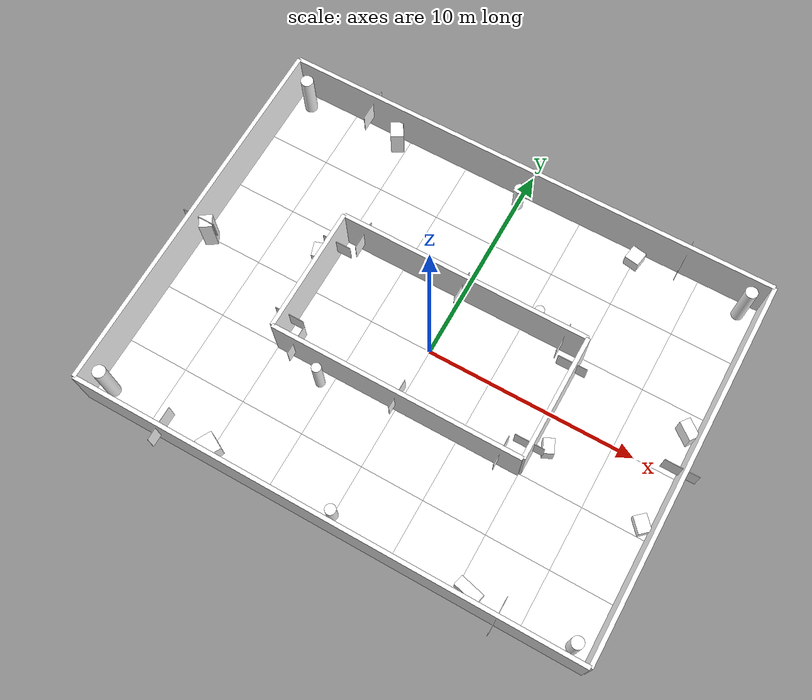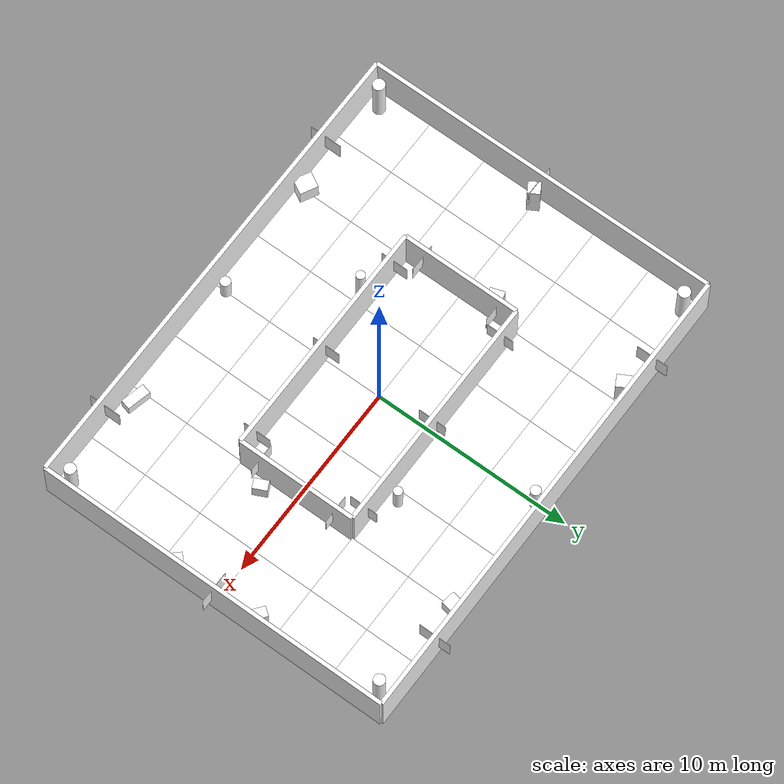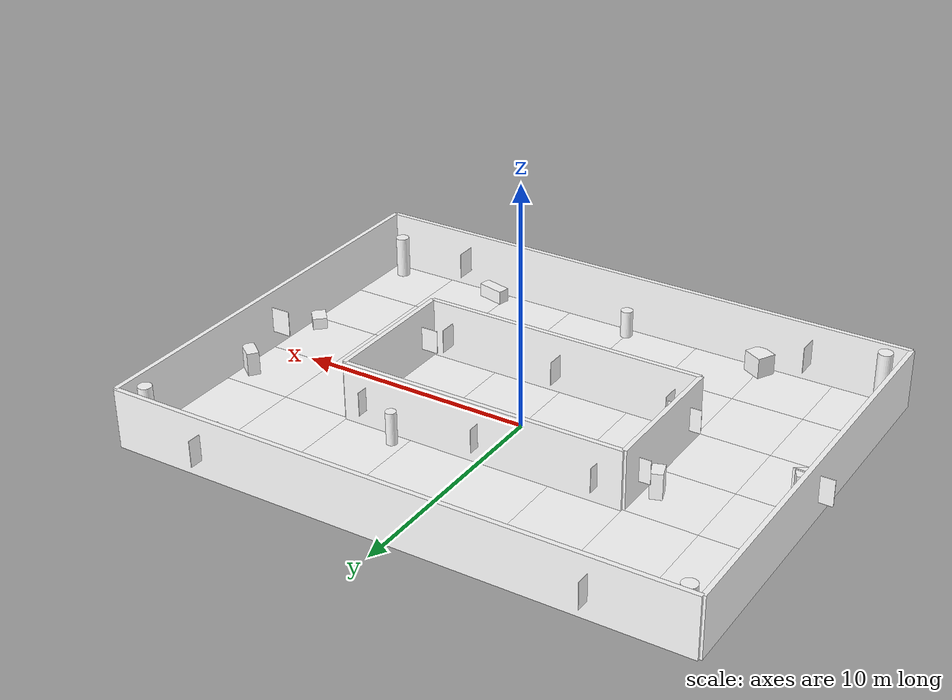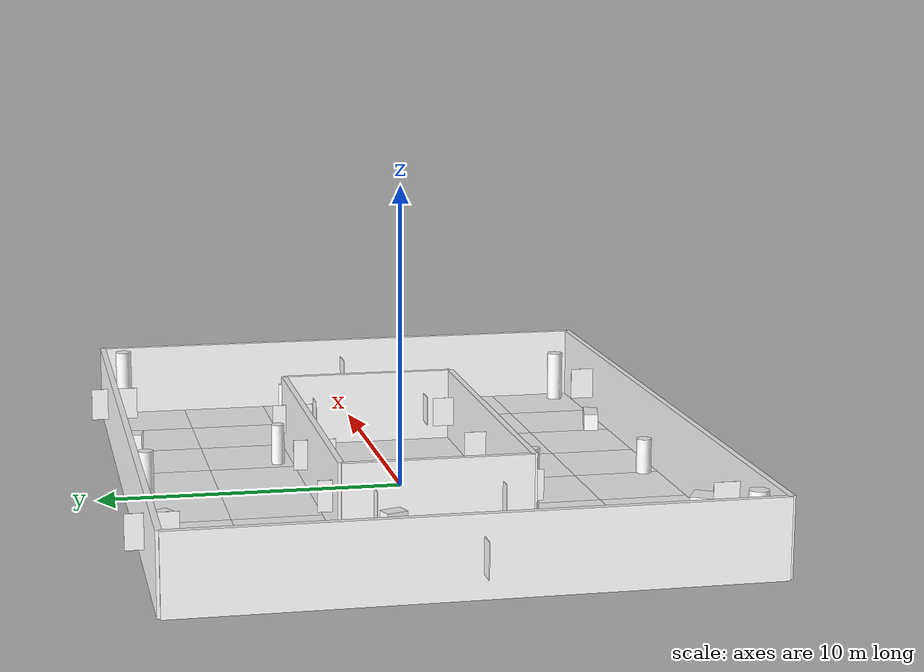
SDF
<?xml version="1.0"?>
<sdf version="1.8">
  <world name="slam_world">

    <physics name="1ms" type="ignored">
      <max_step_size>0.001</max_step_size>
      <real_time_factor>1.0</real_time_factor>
    </physics>

    <plugin filename="libignition-gazebo-physics-system.so"
            name="ignition::gazebo::systems::Physics"/>
    <plugin filename="libignition-gazebo-user-commands-system.so"
            name="ignition::gazebo::systems::UserCommands"/>
    <plugin filename="libignition-gazebo-scene-broadcaster-system.so"
            name="ignition::gazebo::systems::SceneBroadcaster"/>

    <gravity>0 0 -9.8</gravity>
    <magnetic_field>5.565e-06 2.289e-05 -4.239e-05</magnetic_field>
    <atmosphere type="adiabatic"/>

    <scene>
      <ambient>0.55 0.55 0.55 1</ambient>
      <background>0.75 0.80 0.88 1</background>
      <shadows>true</shadows>
      <grid>false</grid>
    </scene>

    <light type="directional" name="sol">
      <cast_shadows>true</cast_shadows>
      <pose>0 0 12 0 0 0</pose>
      <diffuse>0.9 0.9 0.9 1</diffuse>
      <specular>0.25 0.25 0.25 1</specular>
      <attenuation>
        <range>100</range>
        <constant>0.9</constant>
        <linear>0.01</linear>
        <quadratic>0.001</quadratic>
      </attenuation>
      <direction>-0.4 0.3 -0.9</direction>
    </light>

    <light type="point" name="lampara_1">
      <pose>-7 0 2.4 0 0 0</pose>
      <diffuse>0.6 0.6 0.55 1</diffuse>
      <attenuation><range>18</range><constant>0.4</constant><linear>0.05</linear></attenuation>
    </light>
    <light type="point" name="lampara_2">
      <pose>7 0 2.4 0 0 0</pose>
      <diffuse>0.6 0.6 0.55 1</diffuse>
      <attenuation><range>18</range><constant>0.4</constant><linear>0.05</linear></attenuation>
    </light>

    <model name="suelo_colision">
      <static>true</static>
      <link name="link">
        <collision name="col">
          <geometry><plane><normal>0 0 1</normal><size>60 60</size></plane></geometry>
          <surface><friction><ode><mu>100</mu><mu2>50</mu2></ode></friction></surface>
        </collision>
      </link>
    </model>
    <model name="baldosa_0_0">
      <static>true</static>
      <pose>-10.500 -7.500 0.010 0 0 1.5708</pose>
      <link name="link">
        <visual name="vis">
          <geometry><box><size>3.0 3.0 0.02</size></box></geometry>
          <material>
            <diffuse>1.0 1.0 1.0</diffuse>
            <specular>0.15 0.15 0.15</specular>
            <pbr>
              <metal>
                <albedo_map>model://avular_slam/media/textures/suelo_01.png</albedo_map>
                <metalness>0.0</metalness>
                <roughness>0.9</roughness>
              </metal>
            </pbr>
          </material>
        </visual>
      </link>
    </model>
    <model name="baldosa_0_1">
      <static>true</static>
      <pose>-10.500 -4.500 0.010 0 0 1.5708</pose>
      <link name="link">
        <visual name="vis">
          <geometry><box><size>3.0 3.0 0.02</size></box></geometry>
          <material>
            <diffuse>1.0 1.0 1.0</diffuse>
            <specular>0.15 0.15 0.15</specular>
            <pbr>
              <metal>
                <albedo_map>model://avular_slam/media/textures/suelo_05.png</albedo_map>
                <metalness>0.0</metalness>
                <roughness>0.9</roughness>
              </metal>
            </pbr>
          </material>
        </visual>
      </link>
    </model>
    <model name="baldosa_0_2">
      <static>true</static>
      <pose>-10.500 -1.500 0.010 0 0 0.0000</pose>
      <link name="link">
        <visual name="vis">
          <geometry><box><size>3.0 3.0 0.02</size></box></geometry>
          <material>
            <diffuse>1.0 1.0 1.0</diffuse>
            <specular>0.15 0.15 0.15</specular>
            <pbr>
              <metal>
                <albedo_map>model://avular_slam/media/textures/suelo_00.png</albedo_map>
                <metalness>0.0</metalness>
                <roughness>0.9</roughness>
              </metal>
            </pbr>
          </material>
        </visual>
      </link>
    </model>
    <model name="baldosa_0_3">
      <static>true</static>
      <pose>-10.500 1.500 0.010 0 0 0.0000</pose>
      <link name="link">
        <visual name="vis">
          <geometry><box><size>3.0 3.0 0.02</size></box></geometry>
          <material>
            <diffuse>1.0 1.0 1.0</diffuse>
            <specular>0.15 0.15 0.15</specular>
            <pbr>
              <metal>
                <albedo_map>model://avular_slam/media/textures/suelo_02.png</albedo_map>
                <metalness>0.0</metalness>
                <roughness>0.9</roughness>
              </metal>
            </pbr>
          </material>
        </visual>
      </link>
    </model>
    <model name="baldosa_0_4">
      <static>true</static>
      <pose>-10.500 4.500 0.010 0 0 0.0000</pose>
      <link name="link">
        <visual name="vis">
          <geometry><box><size>3.0 3.0 0.02</size></box></geometry>
          <material>
            <diffuse>1.0 1.0 1.0</diffuse>
            <specular>0.15 0.15 0.15</specular>
            <pbr>
              <metal>
                <albedo_map>model://avular_slam/media/textures/suelo_04.png</albedo_map>
                <metalness>0.0</metalness>
                <roughness>0.9</roughness>
              </metal>
            </pbr>
          </material>
        </visual>
      </link>
    </model>
    <model name="baldosa_0_5">
      <static>true</static>
      <pose>-10.500 7.500 0.010 0 0 0.0000</pose>
      <link name="link">
        <visual name="vis">
          <geometry><box><size>3.0 3.0 0.02</size></box></geometry>
          <material>
            <diffuse>1.0 1.0 1.0</diffuse>
            <specular>0.15 0.15 0.15</specular>
            <pbr>
              <metal>
                <albedo_map>model://avular_slam/media/textures/suelo_00.png</albedo_map>
                <metalness>0.0</metalness>
                <roughness>0.9</roughness>
              </metal>
            </pbr>
          </material>
        </visual>
      </link>
    </model>
    <model name="baldosa_1_0">
      <static>true</static>
      <pose>-7.500 -7.500 0.010 0 0 0.0000</pose>
      <link name="link">
        <visual name="vis">
          <geometry><box><size>3.0 3.0 0.02</size></box></geometry>
          <material>
            <diffuse>1.0 1.0 1.0</diffuse>
            <specular>0.15 0.15 0.15</specular>
            <pbr>
              <metal>
                <albedo_map>model://avular_slam/media/textures/suelo_03.png</albedo_map>
                <metalness>0.0</metalness>
                <roughness>0.9</roughness>
              </metal>
            </pbr>
          </material>
        </visual>
      </link>
    </model>
    <model name="baldosa_1_1">
      <static>true</static>
      <pose>-7.500 -4.500 0.010 0 0 1.5708</pose>
      <link name="link">
        <visual name="vis">
          <geometry><box><size>3.0 3.0 0.02</size></box></geometry>
          <material>
            <diffuse>1.0 1.0 1.0</diffuse>
            <specular>0.15 0.15 0.15</specular>
            <pbr>
              <metal>
                <albedo_map>model://avular_slam/media/textures/suelo_00.png</albedo_map>
                <metalness>0.0</metalness>
                <roughness>0.9</roughness>
              </metal>
            </pbr>
          </material>
        </visual>
      </link>
    </model>
    <model name="baldosa_1_2">
      <static>true</static>
      <pose>-7.500 -1.500 0.010 0 0 0.0000</pose>
      <link name="link">
        <visual name="vis">
          <geometry><box><size>3.0 3.0 0.02</size></box></geometry>
          <material>
            <diffuse>1.0 1.0 1.0</diffuse>
            <specular>0.15 0.15 0.15</specular>
            <pbr>
              <metal>
                <albedo_map>model://avular_slam/media/textures/suelo_00.png</albedo_map>
                <metalness>0.0</metalness>
                <roughness>0.9</roughness>
              </metal>
            </pbr>
          </material>
        </visual>
      </link>
    </model>
    <model name="baldosa_1_3">
      <static>true</static>
      <pose>-7.500 1.500 0.010 0 0 1.5708</pose>
      <link name="link">
        <visual name="vis">
          <geometry><box><size>3.0 3.0 0.02</size></box></geometry>
          <material>
            <diffuse>1.0 1.0 1.0</diffuse>
            <specular>0.15 0.15 0.15</specular>
            <pbr>
              <metal>
                <albedo_map>model://avular_slam/media/textures/suelo_00.png</albedo_map>
                <metalness>0.0</metalness>
                <roughness>0.9</roughness>
              </metal>
            </pbr>
          </material>
        </visual>
      </link>
    </model>
    <model name="baldosa_1_4">
      <static>true</static>
      <pose>-7.500 4.500 0.010 0 0 0.0000</pose>
      <link name="link">
        <visual name="vis">
          <geometry><box><size>3.0 3.0 0.02</size></box></geometry>
          <material>
            <diffuse>1.0 1.0 1.0</diffuse>
            <specular>0.15 0.15 0.15</specular>
            <pbr>
              <metal>
                <albedo_map>model://avular_slam/media/textures/suelo_01.png</albedo_map>
                <metalness>0.0</metalness>
                <roughness>0.9</roughness>
              </metal>
            </pbr>
          </material>
        </visual>
      </link>
    </model>
    <model name="baldosa_1_5">
      <static>true</static>
      <pose>-7.500 7.500 0.010 0 0 0.0000</pose>
      <link name="link">
        <visual name="vis">
          <geometry><box><size>3.0 3.0 0.02</size></box></geometry>
          <material>
            <diffuse>1.0 1.0 1.0</diffuse>
            <specular>0.15 0.15 0.15</specular>
            <pbr>
              <metal>
                <albedo_map>model://avular_slam/media/textures/suelo_04.png</albedo_map>
                <metalness>0.0</metalness>
                <roughness>0.9</roughness>
              </metal>
            </pbr>
          </material>
        </visual>
      </link>
    </model>
    <model name="baldosa_2_0">
      <static>true</static>
      <pose>-4.500 -7.500 0.010 0 0 1.5708</pose>
      <link name="link">
        <visual name="vis">
          <geometry><box><size>3.0 3.0 0.02</size></box></geometry>
          <material>
            <diffuse>1.0 1.0 1.0</diffuse>
            <specular>0.15 0.15 0.15</specular>
            <pbr>
              <metal>
                <albedo_map>model://avular_slam/media/textures/suelo_00.png</albedo_map>
                <metalness>0.0</metalness>
                <roughness>0.9</roughness>
              </metal>
            </pbr>
          </material>
        </visual>
      </link>
    </model>
    <model name="baldosa_2_1">
      <static>true</static>
      <pose>-4.500 -4.500 0.010 0 0 0.0000</pose>
      <link name="link">
        <visual name="vis">
          <geometry><box><size>3.0 3.0 0.02</size></box></geometry>
          <material>
            <diffuse>1.0 1.0 1.0</diffuse>
            <specular>0.15 0.15 0.15</specular>
            <pbr>
              <metal>
                <albedo_map>model://avular_slam/media/textures/suelo_00.png</albedo_map>
                <metalness>0.0</metalness>
                <roughness>0.9</roughness>
              </metal>
            </pbr>
          </material>
        </visual>
      </link>
    </model>
    <model name="baldosa_2_2">
      <static>true</static>
      <pose>-4.500 -1.500 0.010 0 0 0.0000</pose>
      <link name="link">
        <visual name="vis">
          <geometry><box><size>3.0 3.0 0.02</size></box></geometry>
          <material>
            <diffuse>1.0 1.0 1.0</diffuse>
            <specular>0.15 0.15 0.15</specular>
            <pbr>
              <metal>
                <albedo_map>model://avular_slam/media/textures/suelo_02.png</albedo_map>
                <metalness>0.0</metalness>
                <roughness>0.9</roughness>
              </metal>
            </pbr>
          </material>
        </visual>
      </link>
    </model>
    <model name="baldosa_2_3">
      <static>true</static>
      <pose>-4.500 1.500 0.010 0 0 1.5708</pose>
      <link name="link">
        <visual name="vis">
          <geometry><box><size>3.0 3.0 0.02</size></box></geometry>
          <material>
            <diffuse>1.0 1.0 1.0</diffuse>
            <specular>0.15 0.15 0.15</specular>
            <pbr>
              <metal>
                <albedo_map>model://avular_slam/media/textures/suelo_01.png</albedo_map>
                <metalness>0.0</metalness>
                <roughness>0.9</roughness>
              </metal>
            </pbr>
          </material>
        </visual>
      </link>
    </model>
    <model name="baldosa_2_4">
      <static>true</static>
      <pose>-4.500 4.500 0.010 0 0 0.0000</pose>
      <link name="link">
        <visual name="vis">
          <geometry><box><size>3.0 3.0 0.02</size></box></geometry>
          <material>
            <diffuse>1.0 1.0 1.0</diffuse>
            <specular>0.15 0.15 0.15</specular>
            <pbr>
              <metal>
                <albedo_map>model://avular_slam/media/textures/suelo_04.png</albedo_map>
                <metalness>0.0</metalness>
                <roughness>0.9</roughness>
              </metal>
            </pbr>
          </material>
        </visual>
      </link>
    </model>
    <model name="baldosa_2_5">
      <static>true</static>
      <pose>-4.500 7.500 0.010 0 0 1.5708</pose>
      <link name="link">
        <visual name="vis">
          <geometry><box><size>3.0 3.0 0.02</size></box></geometry>
          <material>
            <diffuse>1.0 1.0 1.0</diffuse>
            <specular>0.15 0.15 0.15</specular>
            <pbr>
              <metal>
                <albedo_map>model://avular_slam/media/textures/suelo_04.png</albedo_map>
                <metalness>0.0</metalness>
                <roughness>0.9</roughness>
              </metal>
            </pbr>
          </material>
        </visual>
      </link>
    </model>
    <model name="baldosa_3_0">
      <static>true</static>
      <pose>-1.500 -7.500 0.010 0 0 0.0000</pose>
      <link name="link">
        <visual name="vis">
          <geometry><box><size>3.0 3.0 0.02</size></box></geometry>
          <material>
            <diffuse>1.0 1.0 1.0</diffuse>
            <specular>0.15 0.15 0.15</specular>
            <pbr>
              <metal>
                <albedo_map>model://avular_slam/media/textures/suelo_00.png</albedo_map>
                <metalness>0.0</metalness>
                <roughness>0.9</roughness>
              </metal>
            </pbr>
          </material>
        </visual>
      </link>
    </model>
    <model name="baldosa_3_1">
      <static>true</static>
      <pose>-1.500 -4.500 0.010 0 0 0.0000</pose>
      <link name="link">
        <visual name="vis">
          <geometry><box><size>3.0 3.0 0.02</size></box></geometry>
          <material>
            <diffuse>1.0 1.0 1.0</diffuse>
            <specular>0.15 0.15 0.15</specular>
            <pbr>
              <metal>
                <albedo_map>model://avular_slam/media/textures/suelo_02.png</albedo_map>
                <metalness>0.0</metalness>
                <roughness>0.9</roughness>
              </metal>
            </pbr>
          </material>
        </visual>
      </link>
    </model>
    <model name="baldosa_3_2">
      <static>true</static>
      <pose>-1.500 -1.500 0.010 0 0 0.0000</pose>
      <link name="link">
        <visual name="vis">
          <geometry><box><size>3.0 3.0 0.02</size></box></geometry>
          <material>
            <diffuse>1.0 1.0 1.0</diffuse>
            <specular>0.15 0.15 0.15</specular>
            <pbr>
              <metal>
                <albedo_map>model://avular_slam/media/textures/suelo_04.png</albedo_map>
                <metalness>0.0</metalness>
                <roughness>0.9</roughness>
              </metal>
            </pbr>
          </material>
        </visual>
      </link>
    </model>
    <model name="baldosa_3_3">
      <static>true</static>
      <pose>-1.500 1.500 0.010 0 0 0.0000</pose>
      <link name="link">
        <visual name="vis">
          <geometry><box><size>3.0 3.0 0.02</size></box></geometry>
          <material>
            <diffuse>1.0 1.0 1.0</diffuse>
            <specular>0.15 0.15 0.15</specular>
            <pbr>
              <metal>
                <albedo_map>model://avular_slam/media/textures/suelo_04.png</albedo_map>
                <metalness>0.0</metalness>
                <roughness>0.9</roughness>
              </metal>
            </pbr>
          </material>
        </visual>
      </link>
    </model>
    <model name="baldosa_3_4">
      <static>true</static>
      <pose>-1.500 4.500 0.010 0 0 0.0000</pose>
      <link name="link">
        <visual name="vis">
          <geometry><box><size>3.0 3.0 0.02</size></box></geometry>
          <material>
            <diffuse>1.0 1.0 1.0</diffuse>
            <specular>0.15 0.15 0.15</specular>
            <pbr>
              <metal>
                <albedo_map>model://avular_slam/media/textures/suelo_04.png</albedo_map>
                <metalness>0.0</metalness>
                <roughness>0.9</roughness>
              </metal>
            </pbr>
          </material>
        </visual>
      </link>
    </model>
    <model name="baldosa_3_5">
      <static>true</static>
      <pose>-1.500 7.500 0.010 0 0 0.0000</pose>
      <link name="link">
        <visual name="vis">
          <geometry><box><size>3.0 3.0 0.02</size></box></geometry>
          <material>
            <diffuse>1.0 1.0 1.0</diffuse>
            <specular>0.15 0.15 0.15</specular>
            <pbr>
              <metal>
                <albedo_map>model://avular_slam/media/textures/suelo_03.png</albedo_map>
                <metalness>0.0</metalness>
                <roughness>0.9</roughness>
              </metal>
            </pbr>
          </material>
        </visual>
      </link>
    </model>
    <model name="baldosa_4_0">
      <static>true</static>
      <pose>1.500 -7.500 0.010 0 0 1.5708</pose>
      <link name="link">
        <visual name="vis">
          <geometry><box><size>3.0 3.0 0.02</size></box></geometry>
          <material>
            <diffuse>1.0 1.0 1.0</diffuse>
            <specular>0.15 0.15 0.15</specular>
            <pbr>
              <metal>
                <albedo_map>model://avular_slam/media/textures/suelo_02.png</albedo_map>
                <metalness>0.0</metalness>
                <roughness>0.9</roughness>
              </metal>
            </pbr>
          </material>
        </visual>
      </link>
    </model>
    <model name="baldosa_4_1">
      <static>true</static>
      <pose>1.500 -4.500 0.010 0 0 1.5708</pose>
      <link name="link">
        <visual name="vis">
          <geometry><box><size>3.0 3.0 0.02</size></box></geometry>
          <material>
            <diffuse>1.0 1.0 1.0</diffuse>
            <specular>0.15 0.15 0.15</specular>
            <pbr>
              <metal>
                <albedo_map>model://avular_slam/media/textures/suelo_04.png</albedo_map>
                <metalness>0.0</metalness>
                <roughness>0.9</roughness>
              </metal>
            </pbr>
          </material>
        </visual>
      </link>
    </model>
    <model name="baldosa_4_2">
      <static>true</static>
      <pose>1.500 -1.500 0.010 0 0 1.5708</pose>
      <link name="link">
        <visual name="vis">
          <geometry><box><size>3.0 3.0 0.02</size></box></geometry>
          <material>
            <diffuse>1.0 1.0 1.0</diffuse>
            <specular>0.15 0.15 0.15</specular>
            <pbr>
              <metal>
                <albedo_map>model://avular_slam/media/textures/suelo_02.png</albedo_map>
                <metalness>0.0</metalness>
                <roughness>0.9</roughness>
              </metal>
            </pbr>
          </material>
        </visual>
      </link>
    </model>
    <model name="baldosa_4_3">
      <static>true</static>
      <pose>1.500 1.500 0.010 0 0 1.5708</pose>
      <link name="link">
        <visual name="vis">
          <geometry><box><size>3.0 3.0 0.02</size></box></geometry>
          <material>
            <diffuse>1.0 1.0 1.0</diffuse>
            <specular>0.15 0.15 0.15</specular>
            <pbr>
              <metal>
                <albedo_map>model://avular_slam/media/textures/suelo_01.png</albedo_map>
                <metalness>0.0</metalness>
                <roughness>0.9</roughness>
              </metal>
            </pbr>
          </material>
        </visual>
      </link>
    </model>
    <model name="baldosa_4_4">
      <static>true</static>
      <pose>1.500 4.500 0.010 0 0 0.0000</pose>
      <link name="link">
        <visual name="vis">
          <geometry><box><size>3.0 3.0 0.02</size></box></geometry>
          <material>
            <diffuse>1.0 1.0 1.0</diffuse>
            <specular>0.15 0.15 0.15</specular>
            <pbr>
              <metal>
                <albedo_map>model://avular_slam/media/textures/suelo_05.png</albedo_map>
                <metalness>0.0</metalness>
                <roughness>0.9</roughness>
              </metal>
            </pbr>
          </material>
        </visual>
      </link>
    </model>
    <model name="baldosa_4_5">
      <static>true</static>
      <pose>1.500 7.500 0.010 0 0 0.0000</pose>
      <link name="link">
        <visual name="vis">
          <geometry><box><size>3.0 3.0 0.02</size></box></geometry>
          <material>
            <diffuse>1.0 1.0 1.0</diffuse>
            <specular>0.15 0.15 0.15</specular>
            <pbr>
              <metal>
                <albedo_map>model://avular_slam/media/textures/suelo_00.png</albedo_map>
                <metalness>0.0</metalness>
                <roughness>0.9</roughness>
              </metal>
            </pbr>
          </material>
        </visual>
      </link>
    </model>
    <model name="baldosa_5_0">
      <static>true</static>
      <pose>4.500 -7.500 0.010 0 0 1.5708</pose>
      <link name="link">
        <visual name="vis">
          <geometry><box><size>3.0 3.0 0.02</size></box></geometry>
          <material>
            <diffuse>1.0 1.0 1.0</diffuse>
            <specular>0.15 0.15 0.15</specular>
            <pbr>
              <metal>
                <albedo_map>model://avular_slam/media/textures/suelo_04.png</albedo_map>
                <metalness>0.0</metalness>
                <roughness>0.9</roughness>
              </metal>
            </pbr>
          </material>
        </visual>
      </link>
    </model>
    <model name="baldosa_5_1">
      <static>true</static>
      <pose>4.500 -4.500 0.010 0 0 1.5708</pose>
      <link name="link">
        <visual name="vis">
          <geometry><box><size>3.0 3.0 0.02</size></box></geometry>
          <material>
            <diffuse>1.0 1.0 1.0</diffuse>
            <specular>0.15 0.15 0.15</specular>
            <pbr>
              <metal>
                <albedo_map>model://avular_slam/media/textures/suelo_02.png</albedo_map>
                <metalness>0.0</metalness>
                <roughness>0.9</roughness>
              </metal>
            </pbr>
          </material>
        </visual>
      </link>
    </model>
    <model name="baldosa_5_2">
      <static>true</static>
      <pose>4.500 -1.500 0.010 0 0 1.5708</pose>
      <link name="link">
        <visual name="vis">
          <geometry><box><size>3.0 3.0 0.02</size></box></geometry>
          <material>
            <diffuse>1.0 1.0 1.0</diffuse>
            <specular>0.15 0.15 0.15</specular>
            <pbr>
              <metal>
                <albedo_map>model://avular_slam/media/textures/suelo_02.png</albedo_map>
                <metalness>0.0</metalness>
                <roughness>0.9</roughness>
              </metal>
            </pbr>
          </material>
        </visual>
      </link>
    </model>
    <model name="baldosa_5_3">
      <static>true</static>
      <pose>4.500 1.500 0.010 0 0 0.0000</pose>
      <link name="link">
        <visual name="vis">
          <geometry><box><size>3.0 3.0 0.02</size></box></geometry>
          <material>
            <diffuse>1.0 1.0 1.0</diffuse>
            <specular>0.15 0.15 0.15</specular>
            <pbr>
              <metal>
                <albedo_map>model://avular_slam/media/textures/suelo_00.png</albedo_map>
                <metalness>0.0</metalness>
                <roughness>0.9</roughness>
              </metal>
            </pbr>
          </material>
        </visual>
      </link>
    </model>
    <model name="baldosa_5_4">
      <static>true</static>
      <pose>4.500 4.500 0.010 0 0 1.5708</pose>
      <link name="link">
        <visual name="vis">
          <geometry><box><size>3.0 3.0 0.02</size></box></geometry>
          <material>
            <diffuse>1.0 1.0 1.0</diffuse>
            <specular>0.15 0.15 0.15</specular>
            <pbr>
              <metal>
                <albedo_map>model://avular_slam/media/textures/suelo_01.png</albedo_map>
                <metalness>0.0</metalness>
                <roughness>0.9</roughness>
              </metal>
            </pbr>
          </material>
        </visual>
      </link>
    </model>
    <model name="baldosa_5_5">
      <static>true</static>
      <pose>4.500 7.500 0.010 0 0 1.5708</pose>
      <link name="link">
        <visual name="vis">
          <geometry><box><size>3.0 3.0 0.02</size></box></geometry>
          <material>
            <diffuse>1.0 1.0 1.0</diffuse>
            <specular>0.15 0.15 0.15</specular>
            <pbr>
              <metal>
                <albedo_map>model://avular_slam/media/textures/suelo_01.png</albedo_map>
                <metalness>0.0</metalness>
                <roughness>0.9</roughness>
              </metal>
            </pbr>
          </material>
        </visual>
      </link>
    </model>
    <model name="baldosa_6_0">
      <static>true</static>
      <pose>7.500 -7.500 0.010 0 0 1.5708</pose>
      <link name="link">
        <visual name="vis">
          <geometry><box><size>3.0 3.0 0.02</size></box></geometry>
          <material>
            <diffuse>1.0 1.0 1.0</diffuse>
            <specular>0.15 0.15 0.15</specular>
            <pbr>
              <metal>
                <albedo_map>model://avular_slam/media/textures/suelo_03.png</albedo_map>
                <metalness>0.0</metalness>
                <roughness>0.9</roughness>
              </metal>
            </pbr>
          </material>
        </visual>
      </link>
    </model>
    <model name="baldosa_6_1">
      <static>true</static>
      <pose>7.500 -4.500 0.010 0 0 0.0000</pose>
      <link name="link">
        <visual name="vis">
          <geometry><box><size>3.0 3.0 0.02</size></box></geometry>
          <material>
            <diffuse>1.0 1.0 1.0</diffuse>
            <specular>0.15 0.15 0.15</specular>
            <pbr>
              <metal>
                <albedo_map>model://avular_slam/media/textures/suelo_05.png</albedo_map>
                <metalness>0.0</metalness>
                <roughness>0.9</roughness>
              </metal>
            </pbr>
          </material>
        </visual>
      </link>
    </model>
    <model name="baldosa_6_2">
      <static>true</static>
      <pose>7.500 -1.500 0.010 0 0 0.0000</pose>
      <link name="link">
        <visual name="vis">
          <geometry><box><size>3.0 3.0 0.02</size></box></geometry>
          <material>
            <diffuse>1.0 1.0 1.0</diffuse>
            <specular>0.15 0.15 0.15</specular>
            <pbr>
              <metal>
                <albedo_map>model://avular_slam/media/textures/suelo_04.png</albedo_map>
                <metalness>0.0</metalness>
                <roughness>0.9</roughness>
              </metal>
            </pbr>
          </material>
        </visual>
      </link>
    </model>
    <model name="baldosa_6_3">
      <static>true</static>
      <pose>7.500 1.500 0.010 0 0 1.5708</pose>
      <link name="link">
        <visual name="vis">
          <geometry><box><size>3.0 3.0 0.02</size></box></geometry>
          <material>
            <diffuse>1.0 1.0 1.0</diffuse>
            <specular>0.15 0.15 0.15</specular>
            <pbr>
              <metal>
                <albedo_map>model://avular_slam/media/textures/suelo_02.png</albedo_map>
                <metalness>0.0</metalness>
                <roughness>0.9</roughness>
              </metal>
            </pbr>
          </material>
        </visual>
      </link>
    </model>
    <model name="baldosa_6_4">
      <static>true</static>
      <pose>7.500 4.500 0.010 0 0 1.5708</pose>
      <link name="link">
        <visual name="vis">
          <geometry><box><size>3.0 3.0 0.02</size></box></geometry>
          <material>
            <diffuse>1.0 1.0 1.0</diffuse>
            <specular>0.15 0.15 0.15</specular>
            <pbr>
              <metal>
                <albedo_map>model://avular_slam/media/textures/suelo_04.png</albedo_map>
                <metalness>0.0</metalness>
                <roughness>0.9</roughness>
              </metal>
            </pbr>
          </material>
        </visual>
      </link>
    </model>
    <model name="baldosa_6_5">
      <static>true</static>
      <pose>7.500 7.500 0.010 0 0 1.5708</pose>
      <link name="link">
        <visual name="vis">
          <geometry><box><size>3.0 3.0 0.02</size></box></geometry>
          <material>
            <diffuse>1.0 1.0 1.0</diffuse>
            <specular>0.15 0.15 0.15</specular>
            <pbr>
              <metal>
                <albedo_map>model://avular_slam/media/textures/suelo_04.png</albedo_map>
                <metalness>0.0</metalness>
                <roughness>0.9</roughness>
              </metal>
            </pbr>
          </material>
        </visual>
      </link>
    </model>
    <model name="baldosa_7_0">
      <static>true</static>
      <pose>10.500 -7.500 0.010 0 0 1.5708</pose>
      <link name="link">
        <visual name="vis">
          <geometry><box><size>3.0 3.0 0.02</size></box></geometry>
          <material>
            <diffuse>1.0 1.0 1.0</diffuse>
            <specular>0.15 0.15 0.15</specular>
            <pbr>
              <metal>
                <albedo_map>model://avular_slam/media/textures/suelo_00.png</albedo_map>
                <metalness>0.0</metalness>
                <roughness>0.9</roughness>
              </metal>
            </pbr>
          </material>
        </visual>
      </link>
    </model>
    <model name="baldosa_7_1">
      <static>true</static>
      <pose>10.500 -4.500 0.010 0 0 0.0000</pose>
      <link name="link">
        <visual name="vis">
          <geometry><box><size>3.0 3.0 0.02</size></box></geometry>
          <material>
            <diffuse>1.0 1.0 1.0</diffuse>
            <specular>0.15 0.15 0.15</specular>
            <pbr>
              <metal>
                <albedo_map>model://avular_slam/media/textures/suelo_02.png</albedo_map>
                <metalness>0.0</metalness>
                <roughness>0.9</roughness>
              </metal>
            </pbr>
          </material>
        </visual>
      </link>
    </model>
    <model name="baldosa_7_2">
      <static>true</static>
      <pose>10.500 -1.500 0.010 0 0 1.5708</pose>
      <link name="link">
        <visual name="vis">
          <geometry><box><size>3.0 3.0 0.02</size></box></geometry>
          <material>
            <diffuse>1.0 1.0 1.0</diffuse>
            <specular>0.15 0.15 0.15</specular>
            <pbr>
              <metal>
                <albedo_map>model://avular_slam/media/textures/suelo_05.png</albedo_map>
                <metalness>0.0</metalness>
                <roughness>0.9</roughness>
              </metal>
            </pbr>
          </material>
        </visual>
      </link>
    </model>
    <model name="baldosa_7_3">
      <static>true</static>
      <pose>10.500 1.500 0.010 0 0 0.0000</pose>
      <link name="link">
        <visual name="vis">
          <geometry><box><size>3.0 3.0 0.02</size></box></geometry>
          <material>
            <diffuse>1.0 1.0 1.0</diffuse>
            <specular>0.15 0.15 0.15</specular>
            <pbr>
              <metal>
                <albedo_map>model://avular_slam/media/textures/suelo_00.png</albedo_map>
                <metalness>0.0</metalness>
                <roughness>0.9</roughness>
              </metal>
            </pbr>
          </material>
        </visual>
      </link>
    </model>
    <model name="baldosa_7_4">
      <static>true</static>
      <pose>10.500 4.500 0.010 0 0 1.5708</pose>
      <link name="link">
        <visual name="vis">
          <geometry><box><size>3.0 3.0 0.02</size></box></geometry>
          <material>
            <diffuse>1.0 1.0 1.0</diffuse>
            <specular>0.15 0.15 0.15</specular>
            <pbr>
              <metal>
                <albedo_map>model://avular_slam/media/textures/suelo_05.png</albedo_map>
                <metalness>0.0</metalness>
                <roughness>0.9</roughness>
              </metal>
            </pbr>
          </material>
        </visual>
      </link>
    </model>
    <model name="baldosa_7_5">
      <static>true</static>
      <pose>10.500 7.500 0.010 0 0 1.5708</pose>
      <link name="link">
        <visual name="vis">
          <geometry><box><size>3.0 3.0 0.02</size></box></geometry>
          <material>
            <diffuse>1.0 1.0 1.0</diffuse>
            <specular>0.15 0.15 0.15</specular>
            <pbr>
              <metal>
                <albedo_map>model://avular_slam/media/textures/suelo_02.png</albedo_map>
                <metalness>0.0</metalness>
                <roughness>0.9</roughness>
              </metal>
            </pbr>
          </material>
        </visual>
      </link>
    </model>
    <model name="muro_norte">
      <static>true</static>
      <pose>0.000 9.000 1.250 0 0 0.0000</pose>
      <link name="link">
        <collision name="col">
          <geometry><box><size>24.0 0.2 2.5</size></box></geometry>
        </collision>
        <visual name="vis">
          <geometry><box><size>24.0 0.2 2.5</size></box></geometry>
          <material>
            <diffuse>1.0 1.0 1.0</diffuse>
            <specular>0.15 0.15 0.15</specular>
            <pbr>
              <metal>
                <albedo_map>model://avular_slam/media/textures/pared_00.png</albedo_map>
                <metalness>0.0</metalness>
                <roughness>0.9</roughness>
              </metal>
            </pbr>
          </material>
        </visual>
      </link>
    </model>
    <model name="muro_sur">
      <static>true</static>
      <pose>0.000 -9.000 1.250 0 0 0.0000</pose>
      <link name="link">
        <collision name="col">
          <geometry><box><size>24.0 0.2 2.5</size></box></geometry>
        </collision>
        <visual name="vis">
          <geometry><box><size>24.0 0.2 2.5</size></box></geometry>
          <material>
            <diffuse>1.0 1.0 1.0</diffuse>
            <specular>0.15 0.15 0.15</specular>
            <pbr>
              <metal>
                <albedo_map>model://avular_slam/media/textures/pared_01.png</albedo_map>
                <metalness>0.0</metalness>
                <roughness>0.9</roughness>
              </metal>
            </pbr>
          </material>
        </visual>
      </link>
    </model>
    <model name="muro_este">
      <static>true</static>
      <pose>12.000 0.000 1.250 0 0 0.0000</pose>
      <link name="link">
        <collision name="col">
          <geometry><box><size>0.2 18.0 2.5</size></box></geometry>
        </collision>
        <visual name="vis">
          <geometry><box><size>0.2 18.0 2.5</size></box></geometry>
          <material>
            <diffuse>1.0 1.0 1.0</diffuse>
            <specular>0.15 0.15 0.15</specular>
            <pbr>
              <metal>
                <albedo_map>model://avular_slam/media/textures/pared_02.png</albedo_map>
                <metalness>0.0</metalness>
                <roughness>0.9</roughness>
              </metal>
            </pbr>
          </material>
        </visual>
      </link>
    </model>
    <model name="muro_oeste">
      <static>true</static>
      <pose>-12.000 0.000 1.250 0 0 0.0000</pose>
      <link name="link">
        <collision name="col">
          <geometry><box><size>0.2 18.0 2.5</size></box></geometry>
        </collision>
        <visual name="vis">
          <geometry><box><size>0.2 18.0 2.5</size></box></geometry>
          <material>
            <diffuse>1.0 1.0 1.0</diffuse>
            <specular>0.15 0.15 0.15</specular>
            <pbr>
              <metal>
                <albedo_map>model://avular_slam/media/textures/pared_00.png</albedo_map>
                <metalness>0.0</metalness>
                <roughness>0.9</roughness>
              </metal>
            </pbr>
          </material>
        </visual>
      </link>
    </model>
    <model name="bloque_norte">
      <static>true</static>
      <pose>0.000 3.000 1.250 0 0 0.0000</pose>
      <link name="link">
        <collision name="col">
          <geometry><box><size>12.0 0.2 2.5</size></box></geometry>
        </collision>
        <visual name="vis">
          <geometry><box><size>12.0 0.2 2.5</size></box></geometry>
          <material>
            <diffuse>1.0 1.0 1.0</diffuse>
            <specular>0.15 0.15 0.15</specular>
            <pbr>
              <metal>
                <albedo_map>model://avular_slam/media/textures/pared_01.png</albedo_map>
                <metalness>0.0</metalness>
                <roughness>0.9</roughness>
              </metal>
            </pbr>
          </material>
        </visual>
      </link>
    </model>
    <model name="bloque_sur">
      <static>true</static>
      <pose>0.000 -3.000 1.250 0 0 0.0000</pose>
      <link name="link">
        <collision name="col">
          <geometry><box><size>12.0 0.2 2.5</size></box></geometry>
        </collision>
        <visual name="vis">
          <geometry><box><size>12.0 0.2 2.5</size></box></geometry>
          <material>
            <diffuse>1.0 1.0 1.0</diffuse>
            <specular>0.15 0.15 0.15</specular>
            <pbr>
              <metal>
                <albedo_map>model://avular_slam/media/textures/pared_02.png</albedo_map>
                <metalness>0.0</metalness>
                <roughness>0.9</roughness>
              </metal>
            </pbr>
          </material>
        </visual>
      </link>
    </model>
    <model name="bloque_este">
      <static>true</static>
      <pose>6.000 0.000 1.250 0 0 0.0000</pose>
      <link name="link">
        <collision name="col">
          <geometry><box><size>0.2 6.0 2.5</size></box></geometry>
        </collision>
        <visual name="vis">
          <geometry><box><size>0.2 6.0 2.5</size></box></geometry>
          <material>
            <diffuse>1.0 1.0 1.0</diffuse>
            <specular>0.15 0.15 0.15</specular>
            <pbr>
              <metal>
                <albedo_map>model://avular_slam/media/textures/pared_00.png</albedo_map>
                <metalness>0.0</metalness>
                <roughness>0.9</roughness>
              </metal>
            </pbr>
          </material>
        </visual>
      </link>
    </model>
    <model name="bloque_oeste">
      <static>true</static>
      <pose>-6.000 0.000 1.250 0 0 0.0000</pose>
      <link name="link">
        <collision name="col">
          <geometry><box><size>0.2 6.0 2.5</size></box></geometry>
        </collision>
        <visual name="vis">
          <geometry><box><size>0.2 6.0 2.5</size></box></geometry>
          <material>
            <diffuse>1.0 1.0 1.0</diffuse>
            <specular>0.15 0.15 0.15</specular>
            <pbr>
              <metal>
                <albedo_map>model://avular_slam/media/textures/pared_01.png</albedo_map>
                <metalness>0.0</metalness>
                <roughness>0.9</roughness>
              </metal>
            </pbr>
          </material>
        </visual>
      </link>
    </model>
    <model name="poster_00">
      <static>true</static>
      <pose>-5.000 2.870 1.200 0 0 0.0000</pose>
      <link name="link">
        <visual name="vis">
          <geometry><box><size>0.02 1.4 1.0</size></box></geometry>
          <material>
            <diffuse>1.0 1.0 1.0</diffuse>
            <specular>0.15 0.15 0.15</specular>
            <pbr>
              <metal>
                <albedo_map>model://avular_slam/media/textures/poster_00.png</albedo_map>
                <metalness>0.0</metalness>
                <roughness>0.9</roughness>
              </metal>
            </pbr>
          </material>
        </visual>
      </link>
    </model>
    <model name="poster_01">
      <static>true</static>
      <pose>-5.000 -2.870 1.200 0 0 3.1416</pose>
      <link name="link">
        <visual name="vis">
          <geometry><box><size>0.02 1.4 1.0</size></box></geometry>
          <material>
            <diffuse>1.0 1.0 1.0</diffuse>
            <specular>0.15 0.15 0.15</specular>
            <pbr>
              <metal>
                <albedo_map>model://avular_slam/media/textures/poster_01.png</albedo_map>
                <metalness>0.0</metalness>
                <roughness>0.9</roughness>
              </metal>
            </pbr>
          </material>
        </visual>
      </link>
    </model>
    <model name="poster_02">
      <static>true</static>
      <pose>0.000 2.870 1.200 0 0 0.0000</pose>
      <link name="link">
        <visual name="vis">
          <geometry><box><size>0.02 1.4 1.0</size></box></geometry>
          <material>
            <diffuse>1.0 1.0 1.0</diffuse>
            <specular>0.15 0.15 0.15</specular>
            <pbr>
              <metal>
                <albedo_map>model://avular_slam/media/textures/poster_02.png</albedo_map>
                <metalness>0.0</metalness>
                <roughness>0.9</roughness>
              </metal>
            </pbr>
          </material>
        </visual>
      </link>
    </model>
    <model name="poster_03">
      <static>true</static>
      <pose>0.000 -2.870 1.200 0 0 3.1416</pose>
      <link name="link">
        <visual name="vis">
          <geometry><box><size>0.02 1.4 1.0</size></box></geometry>
          <material>
            <diffuse>1.0 1.0 1.0</diffuse>
            <specular>0.15 0.15 0.15</specular>
            <pbr>
              <metal>
                <albedo_map>model://avular_slam/media/textures/poster_03.png</albedo_map>
                <metalness>0.0</metalness>
                <roughness>0.9</roughness>
              </metal>
            </pbr>
          </material>
        </visual>
      </link>
    </model>
    <model name="poster_04">
      <static>true</static>
      <pose>5.000 2.870 1.200 0 0 0.0000</pose>
      <link name="link">
        <visual name="vis">
          <geometry><box><size>0.02 1.4 1.0</size></box></geometry>
          <material>
            <diffuse>1.0 1.0 1.0</diffuse>
            <specular>0.15 0.15 0.15</specular>
            <pbr>
              <metal>
                <albedo_map>model://avular_slam/media/textures/poster_04.png</albedo_map>
                <metalness>0.0</metalness>
                <roughness>0.9</roughness>
              </metal>
            </pbr>
          </material>
        </visual>
      </link>
    </model>
    <model name="poster_05">
      <static>true</static>
      <pose>5.000 -2.870 1.200 0 0 3.1416</pose>
      <link name="link">
        <visual name="vis">
          <geometry><box><size>0.02 1.4 1.0</size></box></geometry>
          <material>
            <diffuse>1.0 1.0 1.0</diffuse>
            <specular>0.15 0.15 0.15</specular>
            <pbr>
              <metal>
                <albedo_map>model://avular_slam/media/textures/poster_05.png</albedo_map>
                <metalness>0.0</metalness>
                <roughness>0.9</roughness>
              </metal>
            </pbr>
          </material>
        </visual>
      </link>
    </model>
    <model name="poster_06">
      <static>true</static>
      <pose>5.870 -2.000 1.200 0 0 -1.5708</pose>
      <link name="link">
        <visual name="vis">
          <geometry><box><size>0.02 1.4 1.0</size></box></geometry>
          <material>
            <diffuse>1.0 1.0 1.0</diffuse>
            <specular>0.15 0.15 0.15</specular>
            <pbr>
              <metal>
                <albedo_map>model://avular_slam/media/textures/poster_06.png</albedo_map>
                <metalness>0.0</metalness>
                <roughness>0.9</roughness>
              </metal>
            </pbr>
          </material>
        </visual>
      </link>
    </model>
    <model name="poster_07">
      <static>true</static>
      <pose>-5.870 -2.000 1.200 0 0 1.5708</pose>
      <link name="link">
        <visual name="vis">
          <geometry><box><size>0.02 1.4 1.0</size></box></geometry>
          <material>
            <diffuse>1.0 1.0 1.0</diffuse>
            <specular>0.15 0.15 0.15</specular>
            <pbr>
              <metal>
                <albedo_map>model://avular_slam/media/textures/poster_07.png</albedo_map>
                <metalness>0.0</metalness>
                <roughness>0.9</roughness>
              </metal>
            </pbr>
          </material>
        </visual>
      </link>
    </model>
    <model name="poster_08">
      <static>true</static>
      <pose>5.870 2.000 1.200 0 0 -1.5708</pose>
      <link name="link">
        <visual name="vis">
          <geometry><box><size>0.02 1.4 1.0</size></box></geometry>
          <material>
            <diffuse>1.0 1.0 1.0</diffuse>
            <specular>0.15 0.15 0.15</specular>
            <pbr>
              <metal>
                <albedo_map>model://avular_slam/media/textures/poster_08.png</albedo_map>
                <metalness>0.0</metalness>
                <roughness>0.9</roughness>
              </metal>
            </pbr>
          </material>
        </visual>
      </link>
    </model>
    <model name="poster_09">
      <static>true</static>
      <pose>-5.870 2.000 1.200 0 0 1.5708</pose>
      <link name="link">
        <visual name="vis">
          <geometry><box><size>0.02 1.4 1.0</size></box></geometry>
          <material>
            <diffuse>1.0 1.0 1.0</diffuse>
            <specular>0.15 0.15 0.15</specular>
            <pbr>
              <metal>
                <albedo_map>model://avular_slam/media/textures/poster_09.png</albedo_map>
                <metalness>0.0</metalness>
                <roughness>0.9</roughness>
              </metal>
            </pbr>
          </material>
        </visual>
      </link>
    </model>
    <model name="poster_ext_00">
      <static>true</static>
      <pose>-8.000 -8.870 1.300 0 0 0.0000</pose>
      <link name="link">
        <visual name="vis">
          <geometry><box><size>0.02 1.6 1.1</size></box></geometry>
          <material>
            <diffuse>1.0 1.0 1.0</diffuse>
            <specular>0.15 0.15 0.15</specular>
            <pbr>
              <metal>
                <albedo_map>model://avular_slam/media/textures/poster_04.png</albedo_map>
                <metalness>0.0</metalness>
                <roughness>0.9</roughness>
              </metal>
            </pbr>
          </material>
        </visual>
      </link>
    </model>
    <model name="poster_ext_01">
      <static>true</static>
      <pose>8.000 -8.870 1.300 0 0 0.0000</pose>
      <link name="link">
        <visual name="vis">
          <geometry><box><size>0.02 1.6 1.1</size></box></geometry>
          <material>
            <diffuse>1.0 1.0 1.0</diffuse>
            <specular>0.15 0.15 0.15</specular>
            <pbr>
              <metal>
                <albedo_map>model://avular_slam/media/textures/poster_05.png</albedo_map>
                <metalness>0.0</metalness>
                <roughness>0.9</roughness>
              </metal>
            </pbr>
          </material>
        </visual>
      </link>
    </model>
    <model name="poster_ext_02">
      <static>true</static>
      <pose>-8.000 8.870 1.300 0 0 3.1416</pose>
      <link name="link">
        <visual name="vis">
          <geometry><box><size>0.02 1.6 1.1</size></box></geometry>
          <material>
            <diffuse>1.0 1.0 1.0</diffuse>
            <specular>0.15 0.15 0.15</specular>
            <pbr>
              <metal>
                <albedo_map>model://avular_slam/media/textures/poster_06.png</albedo_map>
                <metalness>0.0</metalness>
                <roughness>0.9</roughness>
              </metal>
            </pbr>
          </material>
        </visual>
      </link>
    </model>
    <model name="poster_ext_03">
      <static>true</static>
      <pose>8.000 8.870 1.300 0 0 3.1416</pose>
      <link name="link">
        <visual name="vis">
          <geometry><box><size>0.02 1.6 1.1</size></box></geometry>
          <material>
            <diffuse>1.0 1.0 1.0</diffuse>
            <specular>0.15 0.15 0.15</specular>
            <pbr>
              <metal>
                <albedo_map>model://avular_slam/media/textures/poster_07.png</albedo_map>
                <metalness>0.0</metalness>
                <roughness>0.9</roughness>
              </metal>
            </pbr>
          </material>
        </visual>
      </link>
    </model>
    <model name="poster_ext_04">
      <static>true</static>
      <pose>11.870 0.000 1.300 0 0 -1.5708</pose>
      <link name="link">
        <visual name="vis">
          <geometry><box><size>0.02 1.6 1.1</size></box></geometry>
          <material>
            <diffuse>1.0 1.0 1.0</diffuse>
            <specular>0.15 0.15 0.15</specular>
            <pbr>
              <metal>
                <albedo_map>model://avular_slam/media/textures/poster_08.png</albedo_map>
                <metalness>0.0</metalness>
                <roughness>0.9</roughness>
              </metal>
            </pbr>
          </material>
        </visual>
      </link>
    </model>
    <model name="poster_ext_05">
      <static>true</static>
      <pose>-11.870 0.000 1.300 0 0 1.5708</pose>
      <link name="link">
        <visual name="vis">
          <geometry><box><size>0.02 1.6 1.1</size></box></geometry>
          <material>
            <diffuse>1.0 1.0 1.0</diffuse>
            <specular>0.15 0.15 0.15</specular>
            <pbr>
              <metal>
                <albedo_map>model://avular_slam/media/textures/poster_09.png</albedo_map>
                <metalness>0.0</metalness>
                <roughness>0.9</roughness>
              </metal>
            </pbr>
          </material>
        </visual>
      </link>
    </model>
    <model name="columna_0">
      <static>true</static>
      <pose>-11.200 -8.300 1.250 0 0 0</pose>
      <link name="link">
        <collision name="col">
          <geometry><cylinder><radius>0.3</radius><length>2.5</length></cylinder></geometry>
        </collision>
        <visual name="vis">
          <geometry><cylinder><radius>0.3</radius><length>2.5</length></cylinder></geometry>
          <material>
            <diffuse>1.0 1.0 1.0</diffuse>
            <specular>0.15 0.15 0.15</specular>
            <pbr>
              <metal>
                <albedo_map>model://avular_slam/media/textures/pared_00.png</albedo_map>
                <metalness>0.0</metalness>
                <roughness>0.9</roughness>
              </metal>
            </pbr>
          </material>
        </visual>
      </link>
    </model>
    <model name="columna_1">
      <static>true</static>
      <pose>11.200 -8.300 0.900 0 0 0</pose>
      <link name="link">
        <collision name="col">
          <geometry><cylinder><radius>0.28</radius><length>1.8</length></cylinder></geometry>
        </collision>
        <visual name="vis">
          <geometry><cylinder><radius>0.28</radius><length>1.8</length></cylinder></geometry>
          <material>
            <diffuse>1.0 1.0 1.0</diffuse>
            <specular>0.15 0.15 0.15</specular>
            <pbr>
              <metal>
                <albedo_map>model://avular_slam/media/textures/pared_01.png</albedo_map>
                <metalness>0.0</metalness>
                <roughness>0.9</roughness>
              </metal>
            </pbr>
          </material>
        </visual>
      </link>
    </model>
    <model name="columna_2">
      <static>true</static>
      <pose>-11.200 8.300 1.100 0 0 0</pose>
      <link name="link">
        <collision name="col">
          <geometry><cylinder><radius>0.3</radius><length>2.2</length></cylinder></geometry>
        </collision>
        <visual name="vis">
          <geometry><cylinder><radius>0.3</radius><length>2.2</length></cylinder></geometry>
          <material>
            <diffuse>1.0 1.0 1.0</diffuse>
            <specular>0.15 0.15 0.15</specular>
            <pbr>
              <metal>
                <albedo_map>model://avular_slam/media/textures/pared_02.png</albedo_map>
                <metalness>0.0</metalness>
                <roughness>0.9</roughness>
              </metal>
            </pbr>
          </material>
        </visual>
      </link>
    </model>
    <model name="columna_3">
      <static>true</static>
      <pose>11.200 8.300 1.250 0 0 0</pose>
      <link name="link">
        <collision name="col">
          <geometry><cylinder><radius>0.28</radius><length>2.5</length></cylinder></geometry>
        </collision>
        <visual name="vis">
          <geometry><cylinder><radius>0.28</radius><length>2.5</length></cylinder></geometry>
          <material>
            <diffuse>1.0 1.0 1.0</diffuse>
            <specular>0.15 0.15 0.15</specular>
            <pbr>
              <metal>
                <albedo_map>model://avular_slam/media/textures/pared_00.png</albedo_map>
                <metalness>0.0</metalness>
                <roughness>0.9</roughness>
              </metal>
            </pbr>
          </material>
        </visual>
      </link>
    </model>
    <model name="columna_4">
      <static>true</static>
      <pose>0.000 -8.400 0.600 0 0 0</pose>
      <link name="link">
        <collision name="col">
          <geometry><cylinder><radius>0.25</radius><length>1.2</length></cylinder></geometry>
        </collision>
        <visual name="vis">
          <geometry><cylinder><radius>0.25</radius><length>1.2</length></cylinder></geometry>
          <material>
            <diffuse>1.0 1.0 1.0</diffuse>
            <specular>0.15 0.15 0.15</specular>
            <pbr>
              <metal>
                <albedo_map>model://avular_slam/media/textures/pared_01.png</albedo_map>
                <metalness>0.0</metalness>
                <roughness>0.9</roughness>
              </metal>
            </pbr>
          </material>
        </visual>
      </link>
    </model>
    <model name="columna_5">
      <static>true</static>
      <pose>0.000 8.400 0.800 0 0 0</pose>
      <link name="link">
        <collision name="col">
          <geometry><cylinder><radius>0.25</radius><length>1.6</length></cylinder></geometry>
        </collision>
        <visual name="vis">
          <geometry><cylinder><radius>0.25</radius><length>1.6</length></cylinder></geometry>
          <material>
            <diffuse>1.0 1.0 1.0</diffuse>
            <specular>0.15 0.15 0.15</specular>
            <pbr>
              <metal>
                <albedo_map>model://avular_slam/media/textures/pared_02.png</albedo_map>
                <metalness>0.0</metalness>
                <roughness>0.9</roughness>
              </metal>
            </pbr>
          </material>
        </visual>
      </link>
    </model>
    <model name="columna_6">
      <static>true</static>
      <pose>-3.500 -3.600 1.000 0 0 0</pose>
      <link name="link">
        <collision name="col">
          <geometry><cylinder><radius>0.22</radius><length>2.0</length></cylinder></geometry>
        </collision>
        <visual name="vis">
          <geometry><cylinder><radius>0.22</radius><length>2.0</length></cylinder></geometry>
          <material>
            <diffuse>1.0 1.0 1.0</diffuse>
            <specular>0.15 0.15 0.15</specular>
            <pbr>
              <metal>
                <albedo_map>model://avular_slam/media/textures/pared_00.png</albedo_map>
                <metalness>0.0</metalness>
                <roughness>0.9</roughness>
              </metal>
            </pbr>
          </material>
        </visual>
      </link>
    </model>
    <model name="columna_7">
      <static>true</static>
      <pose>3.500 3.600 0.700 0 0 0</pose>
      <link name="link">
        <collision name="col">
          <geometry><cylinder><radius>0.22</radius><length>1.4</length></cylinder></geometry>
        </collision>
        <visual name="vis">
          <geometry><cylinder><radius>0.22</radius><length>1.4</length></cylinder></geometry>
          <material>
            <diffuse>1.0 1.0 1.0</diffuse>
            <specular>0.15 0.15 0.15</specular>
            <pbr>
              <metal>
                <albedo_map>model://avular_slam/media/textures/pared_01.png</albedo_map>
                <metalness>0.0</metalness>
                <roughness>0.9</roughness>
              </metal>
            </pbr>
          </material>
        </visual>
      </link>
    </model>
    <model name="caja_0">
      <static>true</static>
      <pose>-6.000 -8.500 0.450 0 0 1.0749</pose>
      <link name="link">
        <collision name="col">
          <geometry><box><size>0.8 0.9 0.9</size></box></geometry>
        </collision>
        <visual name="vis">
          <geometry><box><size>0.8 0.9 0.9</size></box></geometry>
          <material>
            <diffuse>1.0 1.0 1.0</diffuse>
            <specular>0.15 0.15 0.15</specular>
            <pbr>
              <metal>
                <albedo_map>model://avular_slam/media/textures/poster_02.png</albedo_map>
                <metalness>0.0</metalness>
                <roughness>0.9</roughness>
              </metal>
            </pbr>
          </material>
        </visual>
      </link>
    </model>
    <model name="caja_1">
      <static>true</static>
      <pose>6.500 -8.400 0.300 0 0 1.3306</pose>
      <link name="link">
        <collision name="col">
          <geometry><box><size>0.5 1.2 0.6</size></box></geometry>
        </collision>
        <visual name="vis">
          <geometry><box><size>0.5 1.2 0.6</size></box></geometry>
          <material>
            <diffuse>1.0 1.0 1.0</diffuse>
            <specular>0.15 0.15 0.15</specular>
            <pbr>
              <metal>
                <albedo_map>model://avular_slam/media/textures/poster_03.png</albedo_map>
                <metalness>0.0</metalness>
                <roughness>0.9</roughness>
              </metal>
            </pbr>
          </material>
        </visual>
      </link>
    </model>
    <model name="caja_2">
      <static>true</static>
      <pose>-6.500 8.500 0.700 0 0 0.5205</pose>
      <link name="link">
        <collision name="col">
          <geometry><box><size>0.6 0.8 1.4</size></box></geometry>
        </collision>
        <visual name="vis">
          <geometry><box><size>0.6 0.8 1.4</size></box></geometry>
          <material>
            <diffuse>1.0 1.0 1.0</diffuse>
            <specular>0.15 0.15 0.15</specular>
            <pbr>
              <metal>
                <albedo_map>model://avular_slam/media/textures/poster_04.png</albedo_map>
                <metalness>0.0</metalness>
                <roughness>0.9</roughness>
              </metal>
            </pbr>
          </material>
        </visual>
      </link>
    </model>
    <model name="caja_3">
      <static>true</static>
      <pose>6.000 8.400 0.350 0 0 1.4110</pose>
      <link name="link">
        <collision name="col">
          <geometry><box><size>0.7 0.7 0.7</size></box></geometry>
        </collision>
        <visual name="vis">
          <geometry><box><size>0.7 0.7 0.7</size></box></geometry>
          <material>
            <diffuse>1.0 1.0 1.0</diffuse>
            <specular>0.15 0.15 0.15</specular>
            <pbr>
              <metal>
                <albedo_map>model://avular_slam/media/textures/poster_05.png</albedo_map>
                <metalness>0.0</metalness>
                <roughness>0.9</roughness>
              </metal>
            </pbr>
          </material>
        </visual>
      </link>
    </model>
    <model name="caja_4">
      <static>true</static>
      <pose>-11.500 0.000 0.900 0 0 0.5332</pose>
      <link name="link">
        <collision name="col">
          <geometry><box><size>0.6 0.6 1.8</size></box></geometry>
        </collision>
        <visual name="vis">
          <geometry><box><size>0.6 0.6 1.8</size></box></geometry>
          <material>
            <diffuse>1.0 1.0 1.0</diffuse>
            <specular>0.15 0.15 0.15</specular>
            <pbr>
              <metal>
                <albedo_map>model://avular_slam/media/textures/poster_06.png</albedo_map>
                <metalness>0.0</metalness>
                <roughness>0.9</roughness>
              </metal>
            </pbr>
          </material>
        </visual>
      </link>
    </model>
    <model name="caja_5">
      <static>true</static>
      <pose>11.500 2.000 0.500 0 0 0.9164</pose>
      <link name="link">
        <collision name="col">
          <geometry><box><size>0.5 0.9 1.0</size></box></geometry>
        </collision>
        <visual name="vis">
          <geometry><box><size>0.5 0.9 1.0</size></box></geometry>
          <material>
            <diffuse>1.0 1.0 1.0</diffuse>
            <specular>0.15 0.15 0.15</specular>
            <pbr>
              <metal>
                <albedo_map>model://avular_slam/media/textures/poster_07.png</albedo_map>
                <metalness>0.0</metalness>
                <roughness>0.9</roughness>
              </metal>
            </pbr>
          </material>
        </visual>
      </link>
    </model>
    <model name="caja_6">
      <static>true</static>
      <pose>11.500 -2.500 0.250 0 0 0.7405</pose>
      <link name="link">
        <collision name="col">
          <geometry><box><size>0.6 0.8 0.5</size></box></geometry>
        </collision>
        <visual name="vis">
          <geometry><box><size>0.6 0.8 0.5</size></box></geometry>
          <material>
            <diffuse>1.0 1.0 1.0</diffuse>
            <specular>0.15 0.15 0.15</specular>
            <pbr>
              <metal>
                <albedo_map>model://avular_slam/media/textures/poster_08.png</albedo_map>
                <metalness>0.0</metalness>
                <roughness>0.9</roughness>
              </metal>
            </pbr>
          </material>
        </visual>
      </link>
    </model>
    <model name="caja_7">
      <static>true</static>
      <pose>-6.600 1.500 0.550 0 0 0.3273</pose>
      <link name="link">
        <collision name="col">
          <geometry><box><size>0.5 0.7 1.1</size></box></geometry>
        </collision>
        <visual name="vis">
          <geometry><box><size>0.5 0.7 1.1</size></box></geometry>
          <material>
            <diffuse>1.0 1.0 1.0</diffuse>
            <specular>0.15 0.15 0.15</specular>
            <pbr>
              <metal>
                <albedo_map>model://avular_slam/media/textures/poster_09.png</albedo_map>
                <metalness>0.0</metalness>
                <roughness>0.9</roughness>
              </metal>
            </pbr>
          </material>
        </visual>
      </link>
    </model>
    <model name="caja_8">
      <static>true</static>
      <pose>6.600 -1.500 0.400 0 0 0.4311</pose>
      <link name="link">
        <collision name="col">
          <geometry><box><size>0.5 0.7 0.8</size></box></geometry>
        </collision>
        <visual name="vis">
          <geometry><box><size>0.5 0.7 0.8</size></box></geometry>
          <material>
            <diffuse>1.0 1.0 1.0</diffuse>
            <specular>0.15 0.15 0.15</specular>
            <pbr>
              <metal>
                <albedo_map>model://avular_slam/media/textures/poster_00.png</albedo_map>
                <metalness>0.0</metalness>
                <roughness>0.9</roughness>
              </metal>
            </pbr>
          </material>
        </visual>
      </link>
    </model>

  </world>
</sdf>
